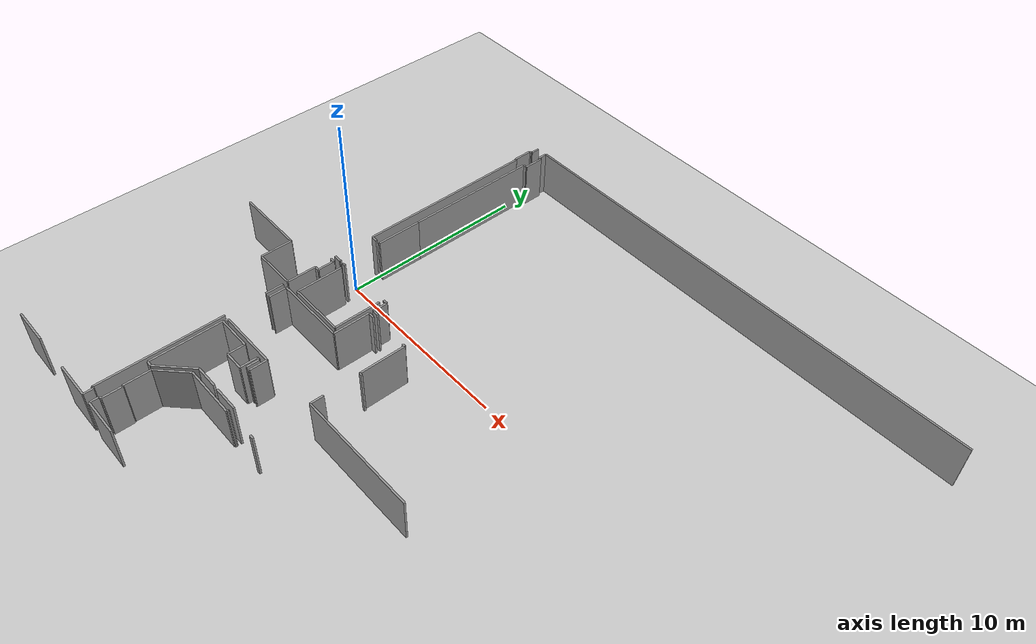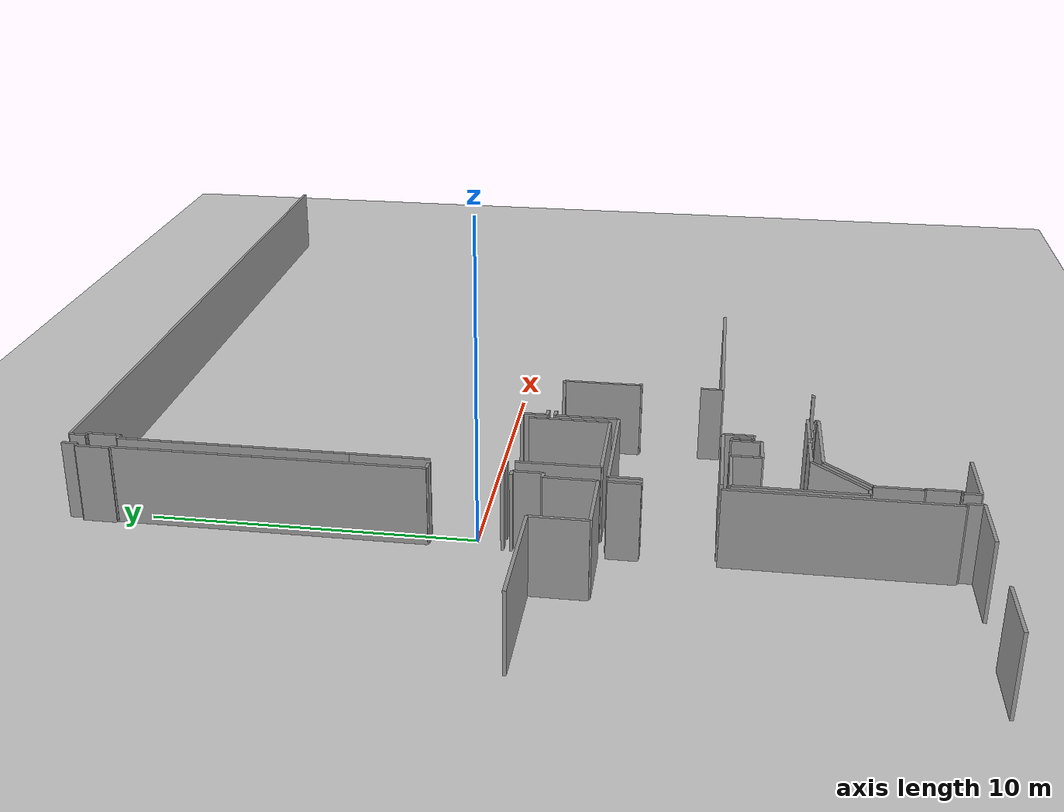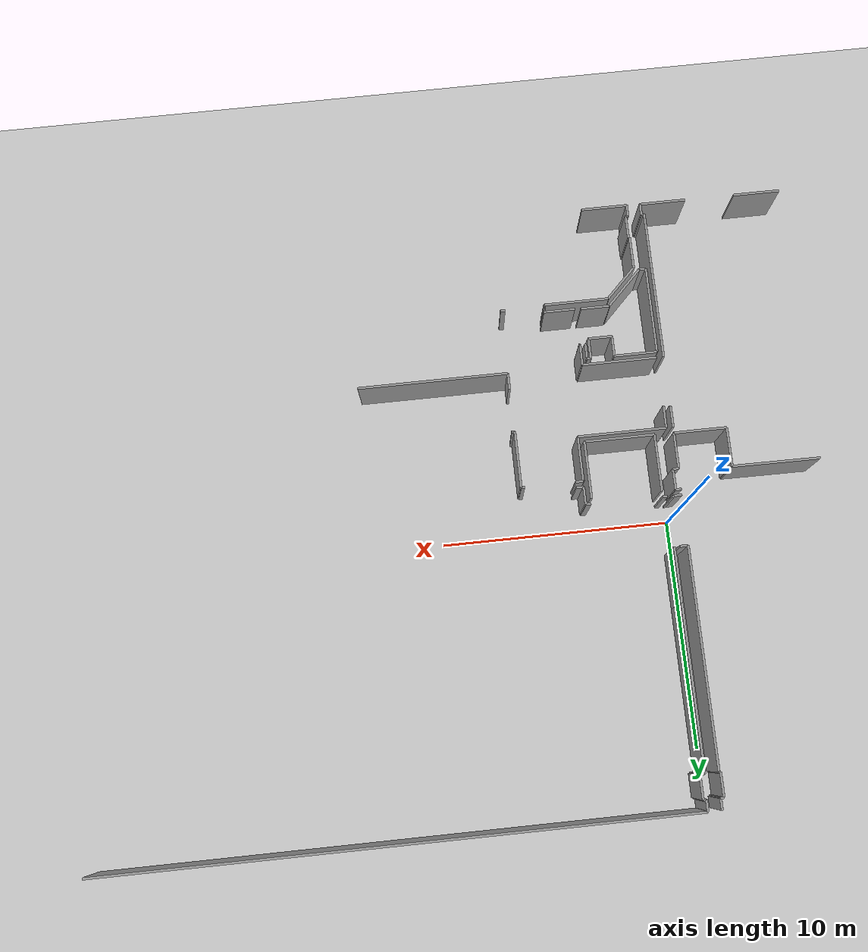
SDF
<sdf version="1.6">
 <world name="default">
  <model name="ground_plane">
   <static>1</static>
   <link name="link">
    <collision name="collision">
     <geometry><plane><normal>0 0 1</normal><size>100 100</size></plane></geometry>
     <surface><friction><ode><mu>100</mu><mu2>50</mu2></ode></friction></surface>
    </collision>
    <visual name="visual">
     <cast_shadows>0</cast_shadows>
     <geometry><plane><normal>0 0 1</normal><size>100 100</size></plane></geometry>
     <material>
      <script><uri>file://media/materials/scripts/gazebo.material</uri><name>Gazebo/Grey</name></script>
     </material>
    </visual>
   </link>
  </model>
  <model name="0510040941_A-40">
   <static>1</static>
   <link name="Wall_61">
    <collision name="Wall_61_Collision">
     <geometry><box><size>0.488544196635 0.1 2.5</size></box></geometry>
     <pose>0.244272098318 0 1.25 0 0 0</pose>
    </collision>
    <visual name="Wall_61_Visual">
     <pose>0.244272098318 0 1.25 0 0 0</pose>
     <geometry><box><size>0.488544196635 0.1 2.5</size></box></geometry>
     <material>
      <script><uri>file://media/materials/scripts/gazebo.material</uri><name>Gazebo/Grey</name></script>
      <ambient>1 1 1 1</ambient>
     </material>
    </visual>
    <pose>58.0930034941 -0.0197852789915 0 0 0 -1.57079632679</pose>
   </link>
   <link name="Wall_62">
    <collision name="Wall_62_Collision">
     <geometry><box><size>0.143443272688 0.1 2.5</size></box></geometry>
     <pose>0.071721636344 0 1.25 0 0 0</pose>
    </collision>
    <visual name="Wall_62_Visual">
     <pose>0.071721636344 0 1.25 0 0 0</pose>
     <geometry><box><size>0.143443272688 0.1 2.5</size></box></geometry>
     <material>
      <script><uri>file://media/materials/scripts/gazebo.material</uri><name>Gazebo/Grey</name></script>
      <ambient>1 1 1 1</ambient>
     </material>
    </visual>
    <pose>58.0930034941 -0.508329475627 0 0 0 3.14159265359</pose>
   </link>
   <link name="Wall_63">
    <collision name="Wall_63_Collision">
     <geometry><box><size>1.05153684691 0.1 2.5</size></box></geometry>
     <pose>0.525768423456 0 1.25 0 0 0</pose>
    </collision>
    <visual name="Wall_63_Visual">
     <pose>0.525768423456 0 1.25 0 0 0</pose>
     <geometry><box><size>1.05153684691 0.1 2.5</size></box></geometry>
     <material>
      <script><uri>file://media/materials/scripts/gazebo.material</uri><name>Gazebo/Grey</name></script>
      <ambient>1 1 1 1</ambient>
     </material>
    </visual>
    <pose>57.9495602214 -0.508329475627 0 0 0 -1.57079632679</pose>
   </link>
   <link name="Wall_64">
    <collision name="Wall_64_Collision">
     <geometry><box><size>0.0591021795514 0.1 2.5</size></box></geometry>
     <pose>0.0295510897757 0 1.25 0 0 0</pose>
    </collision>
    <visual name="Wall_64_Visual">
     <pose>0.0295510897757 0 1.25 0 0 0</pose>
     <geometry><box><size>0.0591021795514 0.1 2.5</size></box></geometry>
     <material>
      <script><uri>file://media/materials/scripts/gazebo.material</uri><name>Gazebo/Grey</name></script>
      <ambient>1 1 1 1</ambient>
     </material>
    </visual>
    <pose>57.9495602214 -1.55986632254 0 0 0 0.0</pose>
   </link>
   <link name="Wall_65">
    <collision name="Wall_65_Collision">
     <geometry><box><size>9.54639711338 0.1 2.5</size></box></geometry>
     <pose>4.77319855669 0 1.25 0 0 0</pose>
    </collision>
    <visual name="Wall_65_Visual">
     <pose>4.77319855669 0 1.25 0 0 0</pose>
     <geometry><box><size>9.54639711338 0.1 2.5</size></box></geometry>
     <material>
      <script><uri>file://media/materials/scripts/gazebo.material</uri><name>Gazebo/Grey</name></script>
      <ambient>1 1 1 1</ambient>
     </material>
    </visual>
    <pose>58.008662401 -1.55986632254 0 0 0 -1.57079632679</pose>
   </link>
   <link name="Wall_66">
    <collision name="Wall_66_Collision">
     <geometry><box><size>0.353471618905 0.1 2.5</size></box></geometry>
     <pose>0.176735809453 0 1.25 0 0 0</pose>
    </collision>
    <visual name="Wall_66_Visual">
     <pose>0.176735809453 0 1.25 0 0 0</pose>
     <geometry><box><size>0.353471618905 0.1 2.5</size></box></geometry>
     <material>
      <script><uri>file://media/materials/scripts/gazebo.material</uri><name>Gazebo/Grey</name></script>
      <ambient>1 1 1 1</ambient>
     </material>
    </visual>
    <pose>58.008662401 -11.1062634359 0 0 0 0.0</pose>
   </link>
   <link name="Wall_67">
    <collision name="Wall_67_Collision">
     <geometry><box><size>0.0672192170864 0.1 2.5</size></box></geometry>
     <pose>0.0336096085432 0 1.25 0 0 0</pose>
    </collision>
    <visual name="Wall_67_Visual">
     <pose>0.0336096085432 0 1.25 0 0 0</pose>
     <geometry><box><size>0.0672192170864 0.1 2.5</size></box></geometry>
     <material>
      <script><uri>file://media/materials/scripts/gazebo.material</uri><name>Gazebo/Grey</name></script>
      <ambient>1 1 1 1</ambient>
     </material>
    </visual>
    <pose>58.3621340199 -13.2506832897 0 0 0 -1.57079632679</pose>
   </link>
   <link name="Wall_68">
    <collision name="Wall_68_Collision">
     <geometry><box><size>0.389998287812 0.1 2.5</size></box></geometry>
     <pose>0.194999143906 0 1.25 0 0 0</pose>
    </collision>
    <visual name="Wall_68_Visual">
     <pose>0.194999143906 0 1.25 0 0 0</pose>
     <geometry><box><size>0.389998287812 0.1 2.5</size></box></geometry>
     <material>
      <script><uri>file://media/materials/scripts/gazebo.material</uri><name>Gazebo/Grey</name></script>
      <ambient>1 1 1 1</ambient>
     </material>
    </visual>
    <pose>58.3621340199 -13.3179025068 0 0 0 3.14159265359</pose>
   </link>
   <link name="Wall_140">
    <collision name="Wall_140_Collision">
     <geometry><box><size>0.965166494391 0.1 2.5</size></box></geometry>
     <pose>0.482583247195 0 1.25 0 0 0</pose>
    </collision>
    <visual name="Wall_140_Visual">
     <pose>0.482583247195 0 1.25 0 0 0</pose>
     <geometry><box><size>0.965166494391 0.1 2.5</size></box></geometry>
     <material>
      <script><uri>file://media/materials/scripts/gazebo.material</uri><name>Gazebo/Grey</name></script>
      <ambient>1 1 1 1</ambient>
     </material>
    </visual>
    <pose>57.9553943422 -16.3206990799 0 0 0 -1.57079632679</pose>
   </link>
   <link name="Wall_141">
    <collision name="Wall_141_Collision">
     <geometry><box><size>6.64988300051 0.1 2.5</size></box></geometry>
     <pose>3.32494150026 0 1.25 0 0 0</pose>
    </collision>
    <visual name="Wall_141_Visual">
     <pose>3.32494150026 0 1.25 0 0 0</pose>
     <geometry><box><size>6.64988300051 0.1 2.5</size></box></geometry>
     <material>
      <script><uri>file://media/materials/scripts/gazebo.material</uri><name>Gazebo/Grey</name></script>
      <ambient>1 1 1 1</ambient>
     </material>
    </visual>
    <pose>57.9553943422 -19.5129777479 0 0 0 -1.57079632679</pose>
   </link>
   <link name="Wall_142">
    <collision name="Wall_142_Collision">
     <geometry><box><size>0.123657993697 0.1 2.5</size></box></geometry>
     <pose>0.0618289968483 0 1.25 0 0 0</pose>
    </collision>
    <visual name="Wall_142_Visual">
     <pose>0.0618289968483 0 1.25 0 0 0</pose>
     <geometry><box><size>0.123657993697 0.1 2.5</size></box></geometry>
     <material>
      <script><uri>file://media/materials/scripts/gazebo.material</uri><name>Gazebo/Grey</name></script>
      <ambient>1 1 1 1</ambient>
     </material>
    </visual>
    <pose>57.9553943422 -26.1628607484 0 0 0 0.0</pose>
   </link>
   <link name="Wall_143">
    <collision name="Wall_143_Collision">
     <geometry><box><size>0.493997831229 0.1 2.5</size></box></geometry>
     <pose>0.246998915615 0 1.25 0 0 0</pose>
    </collision>
    <visual name="Wall_143_Visual">
     <pose>0.246998915615 0 1.25 0 0 0</pose>
     <geometry><box><size>0.493997831229 0.1 2.5</size></box></geometry>
     <material>
      <script><uri>file://media/materials/scripts/gazebo.material</uri><name>Gazebo/Grey</name></script>
      <ambient>1 1 1 1</ambient>
     </material>
    </visual>
    <pose>58.0790523359 -26.1628607484 0 0 0 -1.57079632679</pose>
   </link>
   <link name="Wall_144">
    <collision name="Wall_144_Collision">
     <geometry><box><size>2.02976669859 0.1 2.5</size></box></geometry>
     <pose>1.01488334929 0 1.25 0 0 0</pose>
    </collision>
    <visual name="Wall_144_Visual">
     <pose>1.01488334929 0 1.25 0 0 0</pose>
     <geometry><box><size>2.02976669859 0.1 2.5</size></box></geometry>
     <material>
      <script><uri>file://media/materials/scripts/gazebo.material</uri><name>Gazebo/Grey</name></script>
      <ambient>1 1 1 1</ambient>
     </material>
    </visual>
    <pose>58.0790523359 -26.6568585796 0 0 0 3.14159265359</pose>
   </link>
   <link name="Wall_145">
    <collision name="Wall_145_Collision">
     <geometry><box><size>2.05500561217 0.1 2.5</size></box></geometry>
     <pose>1.02750280609 0 1.25 0 0 0</pose>
    </collision>
    <visual name="Wall_145_Visual">
     <pose>1.02750280609 0 1.25 0 0 0</pose>
     <geometry><box><size>2.05500561217 0.1 2.5</size></box></geometry>
     <material>
      <script><uri>file://media/materials/scripts/gazebo.material</uri><name>Gazebo/Grey</name></script>
      <ambient>1 1 1 1</ambient>
     </material>
    </visual>
    <pose>53.8536269841 -26.6568585796 0 0 0 3.14159265359</pose>
   </link>
   <link name="Wall_152">
    <collision name="Wall_152_Collision">
     <geometry><box><size>0.249345246777 0.1 2.5</size></box></geometry>
     <pose>0.124672623388 0 1.25 0 0 0</pose>
    </collision>
    <visual name="Wall_152_Visual">
     <pose>0.124672623388 0 1.25 0 0 0</pose>
     <geometry><box><size>0.249345246777 0.1 2.5</size></box></geometry>
     <material>
      <script><uri>file://media/materials/scripts/gazebo.material</uri><name>Gazebo/Grey</name></script>
      <ambient>1 1 1 1</ambient>
     </material>
    </visual>
    <pose>57.96249675 -13.5709257862 0 0 0 0.0</pose>
   </link>
   <link name="Wall_153">
    <collision name="Wall_153_Collision">
     <geometry><box><size>0.907332601954 0.1 2.5</size></box></geometry>
     <pose>0.453666300977 0 1.25 0 0 0</pose>
    </collision>
    <visual name="Wall_153_Visual">
     <pose>0.453666300977 0 1.25 0 0 0</pose>
     <geometry><box><size>0.907332601954 0.1 2.5</size></box></geometry>
     <material>
      <script><uri>file://media/materials/scripts/gazebo.material</uri><name>Gazebo/Grey</name></script>
      <ambient>1 1 1 1</ambient>
     </material>
    </visual>
    <pose>58.2118419968 -13.5709257862 0 0 0 -1.57079632679</pose>
   </link>
   <link name="Wall_154">
    <collision name="Wall_154_Collision">
     <geometry><box><size>0.249345246777 0.1 2.5</size></box></geometry>
     <pose>0.124672623388 0 1.25 0 0 0</pose>
    </collision>
    <visual name="Wall_154_Visual">
     <pose>0.124672623388 0 1.25 0 0 0</pose>
     <geometry><box><size>0.249345246777 0.1 2.5</size></box></geometry>
     <material>
      <script><uri>file://media/materials/scripts/gazebo.material</uri><name>Gazebo/Grey</name></script>
      <ambient>1 1 1 1</ambient>
     </material>
    </visual>
    <pose>58.2118419968 -14.4782583881 0 0 0 3.14159265359</pose>
   </link>
   <link name="Wall_155">
    <collision name="Wall_155_Collision">
     <geometry><box><size>1.58611986582 0.1 2.5</size></box></geometry>
     <pose>0.793059932908 0 1.25 0 0 0</pose>
    </collision>
    <visual name="Wall_155_Visual">
     <pose>0.793059932908 0 1.25 0 0 0</pose>
     <geometry><box><size>1.58611986582 0.1 2.5</size></box></geometry>
     <material>
      <script><uri>file://media/materials/scripts/gazebo.material</uri><name>Gazebo/Grey</name></script>
      <ambient>1 1 1 1</ambient>
     </material>
    </visual>
    <pose>57.96249675 -14.4782583881 0 0 0 -1.57079632679</pose>
   </link>
   <link name="Wall_156">
    <collision name="Wall_156_Collision">
     <geometry><box><size>2.30866303514 0.1 2.5</size></box></geometry>
     <pose>1.15433151757 0 1.25 0 0 0</pose>
    </collision>
    <visual name="Wall_156_Visual">
     <pose>1.15433151757 0 1.25 0 0 0</pose>
     <geometry><box><size>2.30866303514 0.1 2.5</size></box></geometry>
     <material>
      <script><uri>file://media/materials/scripts/gazebo.material</uri><name>Gazebo/Grey</name></script>
      <ambient>1 1 1 1</ambient>
     </material>
    </visual>
    <pose>57.96249675 -16.0643782539 0 0 0 3.14159265359</pose>
   </link>
   <link name="Wall_157">
    <collision name="Wall_157_Collision">
     <geometry><box><size>1.72613876329 0.1 2.5</size></box></geometry>
     <pose>0.863069381647 0 1.25 0 0 0</pose>
    </collision>
    <visual name="Wall_157_Visual">
     <pose>0.863069381647 0 1.25 0 0 0</pose>
     <geometry><box><size>1.72613876329 0.1 2.5</size></box></geometry>
     <material>
      <script><uri>file://media/materials/scripts/gazebo.material</uri><name>Gazebo/Grey</name></script>
      <ambient>1 1 1 1</ambient>
     </material>
    </visual>
    <pose>55.6538337149 -16.0643782539 0 0 0 1.57079632679</pose>
   </link>
   <link name="Wall_158">
    <collision name="Wall_158_Collision">
     <geometry><box><size>3.83614340253 0.1 2.5</size></box></geometry>
     <pose>1.91807170126 0 1.25 0 0 0</pose>
    </collision>
    <visual name="Wall_158_Visual">
     <pose>1.91807170126 0 1.25 0 0 0</pose>
     <geometry><box><size>3.83614340253 0.1 2.5</size></box></geometry>
     <material>
      <script><uri>file://media/materials/scripts/gazebo.material</uri><name>Gazebo/Grey</name></script>
      <ambient>1 1 1 1</ambient>
     </material>
    </visual>
    <pose>55.6538337149 -14.3382394907 0 0 0 3.13504642693</pose>
   </link>
   <link name="Wall_159">
    <collision name="Wall_159_Collision">
     <geometry><box><size>2.51628163584 0.1 2.5</size></box></geometry>
     <pose>1.25814081792 0 1.25 0 0 0</pose>
    </collision>
    <visual name="Wall_159_Visual">
     <pose>1.25814081792 0 1.25 0 0 0</pose>
     <geometry><box><size>2.51628163584 0.1 2.5</size></box></geometry>
     <material>
      <script><uri>file://media/materials/scripts/gazebo.material</uri><name>Gazebo/Grey</name></script>
      <ambient>1 1 1 1</ambient>
     </material>
    </visual>
    <pose>58.8081905982 -16.0817537874 0 0 0 1.57079632679</pose>
   </link>
   <link name="Wall_160">
    <collision name="Wall_160_Collision">
     <geometry><box><size>2.51311091805 0.1 2.5</size></box></geometry>
     <pose>1.25655545902 0 1.25 0 0 0</pose>
    </collision>
    <visual name="Wall_160_Visual">
     <pose>1.25655545902 0 1.25 0 0 0</pose>
     <geometry><box><size>2.51311091805 0.1 2.5</size></box></geometry>
     <material>
      <script><uri>file://media/materials/scripts/gazebo.material</uri><name>Gazebo/Grey</name></script>
      <ambient>1 1 1 1</ambient>
     </material>
    </visual>
    <pose>61.8610845123 -13.5654721516 0 0 0 -1.57079632679</pose>
   </link>
   <link name="Wall_161">
    <collision name="Wall_161_Collision">
     <geometry><box><size>3.05289556067 0.1 2.5</size></box></geometry>
     <pose>1.52644778033 0 1.25 0 0 0</pose>
    </collision>
    <visual name="Wall_161_Visual">
     <pose>1.52644778033 0 1.25 0 0 0</pose>
     <geometry><box><size>3.05289556067 0.1 2.5</size></box></geometry>
     <material>
      <script><uri>file://media/materials/scripts/gazebo.material</uri><name>Gazebo/Grey</name></script>
      <ambient>1 1 1 1</ambient>
     </material>
    </visual>
    <pose>61.8610845123 -16.0785830696 0 0 0 -3.1405540598</pose>
   </link>
   <link name="Wall_162">
    <collision name="Wall_162_Collision">
     <geometry><box><size>7.13170527544 0.1 2.5</size></box></geometry>
     <pose>3.56585263772 0 1.25 0 0 0</pose>
    </collision>
    <visual name="Wall_162_Visual">
     <pose>3.56585263772 0 1.25 0 0 0</pose>
     <geometry><box><size>7.13170527544 0.1 2.5</size></box></geometry>
     <material>
      <script><uri>file://media/materials/scripts/gazebo.material</uri><name>Gazebo/Grey</name></script>
      <ambient>1 1 1 1</ambient>
     </material>
    </visual>
    <pose>58.6050110024 -8.68586430596 0 0 0 1.57079632679</pose>
   </link>
   <link name="Wall_163">
    <collision name="Wall_163_Collision">
     <geometry><box><size>0.20939420266 0.1 2.5</size></box></geometry>
     <pose>0.10469710133 0 1.25 0 0 0</pose>
    </collision>
    <visual name="Wall_163_Visual">
     <pose>0.10469710133 0 1.25 0 0 0</pose>
     <geometry><box><size>0.20939420266 0.1 2.5</size></box></geometry>
     <material>
      <script><uri>file://media/materials/scripts/gazebo.material</uri><name>Gazebo/Grey</name></script>
      <ambient>1 1 1 1</ambient>
     </material>
    </visual>
    <pose>58.6050110024 -1.55415903052 0 0 0 0.0</pose>
   </link>
   <link name="Wall_164">
    <collision name="Wall_164_Collision">
     <geometry><box><size>1.04126372128 0.1 2.5</size></box></geometry>
     <pose>0.520631860641 0 1.25 0 0 0</pose>
    </collision>
    <visual name="Wall_164_Visual">
     <pose>0.520631860641 0 1.25 0 0 0</pose>
     <geometry><box><size>1.04126372128 0.1 2.5</size></box></geometry>
     <material>
      <script><uri>file://media/materials/scripts/gazebo.material</uri><name>Gazebo/Grey</name></script>
      <ambient>1 1 1 1</ambient>
     </material>
    </visual>
    <pose>58.8144052051 -1.55415903052 0 0 0 1.57079632679</pose>
   </link>
   <link name="Wall_165">
    <collision name="Wall_165_Collision">
     <geometry><box><size>0.13076040154 0.1 2.5</size></box></geometry>
     <pose>0.0653802007699 0 1.25 0 0 0</pose>
    </collision>
    <visual name="Wall_165_Visual">
     <pose>0.0653802007699 0 1.25 0 0 0</pose>
     <geometry><box><size>0.13076040154 0.1 2.5</size></box></geometry>
     <material>
      <script><uri>file://media/materials/scripts/gazebo.material</uri><name>Gazebo/Grey</name></script>
      <ambient>1 1 1 1</ambient>
     </material>
    </visual>
    <pose>58.8144052051 -0.51289530924 0 0 0 3.14159265359</pose>
   </link>
   <link name="Wall_166">
    <collision name="Wall_166_Collision">
     <geometry><box><size>0.498183178708 0.1 2.5</size></box></geometry>
     <pose>0.249091589354 0 1.25 0 0 0</pose>
    </collision>
    <visual name="Wall_166_Visual">
     <pose>0.249091589354 0 1.25 0 0 0</pose>
     <geometry><box><size>0.498183178708 0.1 2.5</size></box></geometry>
     <material>
      <script><uri>file://media/materials/scripts/gazebo.material</uri><name>Gazebo/Grey</name></script>
      <ambient>1 1 1 1</ambient>
     </material>
    </visual>
    <pose>58.6836448035 -0.51289530924 0 0 0 1.57079632679</pose>
   </link>
   <link name="Wall_167">
    <collision name="Wall_167_Collision">
     <geometry><box><size>25.7403943105 0.1 2.5</size></box></geometry>
     <pose>12.8701971552 0 1.25 0 0 0</pose>
    </collision>
    <visual name="Wall_167_Visual">
     <pose>12.8701971552 0 1.25 0 0 0</pose>
     <geometry><box><size>25.7403943105 0.1 2.5</size></box></geometry>
     <material>
      <script><uri>file://media/materials/scripts/gazebo.material</uri><name>Gazebo/Grey</name></script>
      <ambient>1 1 1 1</ambient>
     </material>
    </visual>
    <pose>58.6836448035 -0.0147121305321 0 0 0 0.0</pose>
   </link>
   <link name="Wall_182">
    <collision name="Wall_182_Collision">
     <geometry><box><size>0.325949788513 0.1 2.5</size></box></geometry>
     <pose>0.162974894257 0 1.25 0 0 0</pose>
    </collision>
    <visual name="Wall_182_Visual">
     <pose>0.162974894257 0 1.25 0 0 0</pose>
     <geometry><box><size>0.325949788513 0.1 2.5</size></box></geometry>
     <material>
      <script><uri>file://media/materials/scripts/gazebo.material</uri><name>Gazebo/Grey</name></script>
      <ambient>1 1 1 1</ambient>
     </material>
    </visual>
    <pose>62.4602233454 -14.1020844299 0 0 0 3.14159265359</pose>
   </link>
   <link name="Wall_183">
    <collision name="Wall_183_Collision">
     <geometry><box><size>0.774669769742 0.1 2.5</size></box></geometry>
     <pose>0.387334884871 0 1.25 0 0 0</pose>
    </collision>
    <visual name="Wall_183_Visual">
     <pose>0.387334884871 0 1.25 0 0 0</pose>
     <geometry><box><size>0.774669769742 0.1 2.5</size></box></geometry>
     <material>
      <script><uri>file://media/materials/scripts/gazebo.material</uri><name>Gazebo/Grey</name></script>
      <ambient>1 1 1 1</ambient>
     </material>
    </visual>
    <pose>62.1342735568 -14.1020844299 0 0 0 1.57079632679</pose>
   </link>
   <link name="Wall_184">
    <collision name="Wall_184_Collision">
     <geometry><box><size>0.230194111343 0.1 2.5</size></box></geometry>
     <pose>0.115097055671 0 1.25 0 0 0</pose>
    </collision>
    <visual name="Wall_184_Visual">
     <pose>0.115097055671 0 1.25 0 0 0</pose>
     <geometry><box><size>0.230194111343 0.1 2.5</size></box></geometry>
     <material>
      <script><uri>file://media/materials/scripts/gazebo.material</uri><name>Gazebo/Grey</name></script>
      <ambient>1 1 1 1</ambient>
     </material>
    </visual>
    <pose>62.1342735568 -13.3274146601 0 0 0 3.14159265359</pose>
   </link>
   <link name="Wall_185">
    <collision name="Wall_185_Collision">
     <geometry><box><size>0.203052767085 0.1 2.5</size></box></geometry>
     <pose>0.101526383543 0 1.25 0 0 0</pose>
    </collision>
    <visual name="Wall_185_Visual">
     <pose>0.101526383543 0 1.25 0 0 0</pose>
     <geometry><box><size>0.203052767085 0.1 2.5</size></box></geometry>
     <material>
      <script><uri>file://media/materials/scripts/gazebo.material</uri><name>Gazebo/Grey</name></script>
      <ambient>1 1 1 1</ambient>
     </material>
    </visual>
    <pose>58.8009613616 -13.3274146601 0 0 0 3.14159265359</pose>
   </link>
   <link name="Wall_186">
    <collision name="Wall_186_Collision">
     <geometry><box><size>2.42624364624 0.1 2.5</size></box></geometry>
     <pose>1.21312182312 0 1.25 0 0 0</pose>
    </collision>
    <visual name="Wall_186_Visual">
     <pose>1.21312182312 0 1.25 0 0 0</pose>
     <geometry><box><size>2.42624364624 0.1 2.5</size></box></geometry>
     <material>
      <script><uri>file://media/materials/scripts/gazebo.material</uri><name>Gazebo/Grey</name></script>
      <ambient>1 1 1 1</ambient>
     </material>
    </visual>
    <pose>58.5979085945 -11.1120975566 0 0 0 1.5678689959</pose>
   </link>
   <link name="Wall_187">
    <collision name="Wall_187_Collision">
     <geometry><box><size>3.8654854686 0.1 2.5</size></box></geometry>
     <pose>1.9327427343 0 1.25 0 0 0</pose>
    </collision>
    <visual name="Wall_187_Visual">
     <pose>1.9327427343 0 1.25 0 0 0</pose>
     <geometry><box><size>3.8654854686 0.1 2.5</size></box></geometry>
     <material>
      <script><uri>file://media/materials/scripts/gazebo.material</uri><name>Gazebo/Grey</name></script>
      <ambient>1 1 1 1</ambient>
     </material>
    </visual>
    <pose>58.2555979023 -16.322855168 0 0 0 0.0</pose>
   </link>
   <link name="Wall_188">
    <collision name="Wall_188_Collision">
     <geometry><box><size>1.97599132492 0.1 2.5</size></box></geometry>
     <pose>0.987995662458 0 1.25 0 0 0</pose>
    </collision>
    <visual name="Wall_188_Visual">
     <pose>0.987995662458 0 1.25 0 0 0</pose>
     <geometry><box><size>1.97599132492 0.1 2.5</size></box></geometry>
     <material>
      <script><uri>file://media/materials/scripts/gazebo.material</uri><name>Gazebo/Grey</name></script>
      <ambient>1 1 1 1</ambient>
     </material>
    </visual>
    <pose>62.1210833709 -16.322855168 0 0 0 1.57079632679</pose>
   </link>
   <link name="Wall_189">
    <collision name="Wall_189_Collision">
     <geometry><box><size>0.334447312183 0.1 2.5</size></box></geometry>
     <pose>0.167223656091 0 1.25 0 0 0</pose>
    </collision>
    <visual name="Wall_189_Visual">
     <pose>0.167223656091 0 1.25 0 0 0</pose>
     <geometry><box><size>0.334447312183 0.1 2.5</size></box></geometry>
     <material>
      <script><uri>file://media/materials/scripts/gazebo.material</uri><name>Gazebo/Grey</name></script>
      <ambient>1 1 1 1</ambient>
     </material>
    </visual>
    <pose>62.1210833709 -14.346863843 0 0 0 0.0</pose>
   </link>
   <link name="Wall_190">
    <collision name="Wall_190_Collision">
     <geometry><box><size>0.159423690335 0.1 2.5</size></box></geometry>
     <pose>0.0797118451675 0 1.25 0 0 0</pose>
    </collision>
    <visual name="Wall_190_Visual">
     <pose>0.0797118451675 0 1.25 0 0 0</pose>
     <geometry><box><size>0.159423690335 0.1 2.5</size></box></geometry>
     <material>
      <script><uri>file://media/materials/scripts/gazebo.material</uri><name>Gazebo/Grey</name></script>
      <ambient>1 1 1 1</ambient>
     </material>
    </visual>
    <pose>64.6529649382 -14.346863843 0 0 0 0.0</pose>
   </link>
   <link name="Wall_191">
    <collision name="Wall_191_Collision">
     <geometry><box><size>2.48406714312 0.1 2.5</size></box></geometry>
     <pose>1.24203357156 0 1.25 0 0 0</pose>
    </collision>
    <visual name="Wall_191_Visual">
     <pose>1.24203357156 0 1.25 0 0 0</pose>
     <geometry><box><size>2.48406714312 0.1 2.5</size></box></geometry>
     <material>
      <script><uri>file://media/materials/scripts/gazebo.material</uri><name>Gazebo/Grey</name></script>
      <ambient>1 1 1 1</ambient>
     </material>
    </visual>
    <pose>64.8123886285 -14.346863843 0 0 0 -1.57079632679</pose>
   </link>
   <link name="Wall_192">
    <collision name="Wall_192_Collision">
     <geometry><box><size>0.132028688655 0.1 2.5</size></box></geometry>
     <pose>0.0660143443273 0 1.25 0 0 0</pose>
    </collision>
    <visual name="Wall_192_Visual">
     <pose>0.0660143443273 0 1.25 0 0 0</pose>
     <geometry><box><size>0.132028688655 0.1 2.5</size></box></geometry>
     <material>
      <script><uri>file://media/materials/scripts/gazebo.material</uri><name>Gazebo/Grey</name></script>
      <ambient>1 1 1 1</ambient>
     </material>
    </visual>
    <pose>64.8123886285 -16.8309309862 0 0 0 0.0</pose>
   </link>
   <link name="Wall_194">
    <collision name="Wall_194_Collision">
     <geometry><box><size>0.701743260639 0.1 2.5</size></box></geometry>
     <pose>0.35087163032 0 1.25 0 0 0</pose>
    </collision>
    <visual name="Wall_194_Visual">
     <pose>0.35087163032 0 1.25 0 0 0</pose>
     <geometry><box><size>0.701743260639 0.1 2.5</size></box></geometry>
     <material>
      <script><uri>file://media/materials/scripts/gazebo.material</uri><name>Gazebo/Grey</name></script>
      <ambient>1 1 1 1</ambient>
     </material>
    </visual>
    <pose>64.8269739304 -18.7648151789 0 0 0 -1.57079632679</pose>
   </link>
   <link name="Wall_195">
    <collision name="Wall_195_Collision">
     <geometry><box><size>6.58799058931 0.1 2.5</size></box></geometry>
     <pose>3.29399529465 0 1.25 0 0 0</pose>
    </collision>
    <visual name="Wall_195_Visual">
     <pose>3.29399529465 0 1.25 0 0 0</pose>
     <geometry><box><size>6.58799058931 0.1 2.5</size></box></geometry>
     <material>
      <script><uri>file://media/materials/scripts/gazebo.material</uri><name>Gazebo/Grey</name></script>
      <ambient>1 1 1 1</ambient>
     </material>
    </visual>
    <pose>64.8269739304 -19.4665584395 0 0 0 0.0</pose>
   </link>
   <link name="Wall_200">
    <collision name="Wall_200_Collision">
     <geometry><box><size>1.3739354315 0.1 2.5</size></box></geometry>
     <pose>0.686967715751 0 1.25 0 0 0</pose>
    </collision>
    <visual name="Wall_200_Visual">
     <pose>0.686967715751 0 1.25 0 0 0</pose>
     <geometry><box><size>1.3739354315 0.1 2.5</size></box></geometry>
     <material>
      <script><uri>file://media/materials/scripts/gazebo.material</uri><name>Gazebo/Grey</name></script>
      <ambient>1 1 1 1</ambient>
     </material>
    </visual>
    <pose>62.9422992777 -22.0844298732 0 0 0 3.14159265359</pose>
   </link>
   <link name="Wall_201">
    <collision name="Wall_201_Collision">
     <geometry><box><size>0.0339900946776 0.1 2.5</size></box></geometry>
     <pose>0.0169950473388 0 1.25 0 0 0</pose>
    </collision>
    <visual name="Wall_201_Visual">
     <pose>0.0169950473388 0 1.25 0 0 0</pose>
     <geometry><box><size>0.0339900946776 0.1 2.5</size></box></geometry>
     <material>
      <script><uri>file://media/materials/scripts/gazebo.material</uri><name>Gazebo/Grey</name></script>
      <ambient>1 1 1 1</ambient>
     </material>
    </visual>
    <pose>61.5683638462 -20.4336273646 0 0 0 3.14159265359</pose>
   </link>
   <link name="Wall_202">
    <collision name="Wall_202_Collision">
     <geometry><box><size>0.916464269181 0.1 2.5</size></box></geometry>
     <pose>0.458232134591 0 1.25 0 0 0</pose>
    </collision>
    <visual name="Wall_202_Visual">
     <pose>0.458232134591 0 1.25 0 0 0</pose>
     <geometry><box><size>0.916464269181 0.1 2.5</size></box></geometry>
     <material>
      <script><uri>file://media/materials/scripts/gazebo.material</uri><name>Gazebo/Grey</name></script>
      <ambient>1 1 1 1</ambient>
     </material>
    </visual>
    <pose>61.5343737515 -20.4336273646 0 0 0 1.57079632679</pose>
   </link>
   <link name="Wall_203">
    <collision name="Wall_203_Collision">
     <geometry><box><size>3.28448314129 0.1 2.5</size></box></geometry>
     <pose>1.64224157065 0 1.25 0 0 0</pose>
    </collision>
    <visual name="Wall_203_Visual">
     <pose>1.64224157065 0 1.25 0 0 0</pose>
     <geometry><box><size>3.28448314129 0.1 2.5</size></box></geometry>
     <material>
      <script><uri>file://media/materials/scripts/gazebo.material</uri><name>Gazebo/Grey</name></script>
      <ambient>1 1 1 1</ambient>
     </material>
    </visual>
    <pose>61.5343737515 -19.5171630954 0 0 0 3.14159265359</pose>
   </link>
   <link name="Wall_204">
    <collision name="Wall_204_Collision">
     <geometry><box><size>0.97913428646 0.1 2.5</size></box></geometry>
     <pose>0.48956714323 0 1.25 0 0 0</pose>
    </collision>
    <visual name="Wall_204_Visual">
     <pose>0.48956714323 0 1.25 0 0 0</pose>
     <geometry><box><size>0.97913428646 0.1 2.5</size></box></geometry>
     <material>
      <script><uri>file://media/materials/scripts/gazebo.material</uri><name>Gazebo/Grey</name></script>
      <ambient>1 1 1 1</ambient>
     </material>
    </visual>
    <pose>58.2498906102 -17.3019728206 0 0 0 1.56496737727</pose>
   </link>
   <link name="Wall_212">
    <collision name="Wall_212_Collision">
     <geometry><box><size>3.83821729563 0.1 2.5</size></box></geometry>
     <pose>1.91910864782 0 1.25 0 0 0</pose>
    </collision>
    <visual name="Wall_212_Visual">
     <pose>1.91910864782 0 1.25 0 0 0</pose>
     <geometry><box><size>3.83821729563 0.1 2.5</size></box></geometry>
     <material>
      <script><uri>file://media/materials/scripts/gazebo.material</uri><name>Gazebo/Grey</name></script>
      <ambient>1 1 1 1</ambient>
     </material>
    </visual>
    <pose>58.2115883394 -23.6076426982 0 0 0 1.57079632679</pose>
   </link>
   <link name="Wall_213">
    <collision name="Wall_213_Collision">
     <geometry><box><size>1.88619659719 0.1 2.5</size></box></geometry>
     <pose>0.943098298593 0 1.25 0 0 0</pose>
    </collision>
    <visual name="Wall_213_Visual">
     <pose>0.943098298593 0 1.25 0 0 0</pose>
     <geometry><box><size>1.88619659719 0.1 2.5</size></box></geometry>
     <material>
      <script><uri>file://media/materials/scripts/gazebo.material</uri><name>Gazebo/Grey</name></script>
      <ambient>1 1 1 1</ambient>
     </material>
    </visual>
    <pose>58.2115883394 -19.7694254025 0 0 0 0.0</pose>
   </link>
   <link name="Wall_214">
    <collision name="Wall_214_Collision">
     <geometry><box><size>0.899215564419 0.1 2.5</size></box></geometry>
     <pose>0.44960778221 0 1.25 0 0 0</pose>
    </collision>
    <visual name="Wall_214_Visual">
     <pose>0.44960778221 0 1.25 0 0 0</pose>
     <geometry><box><size>0.899215564419 0.1 2.5</size></box></geometry>
     <material>
      <script><uri>file://media/materials/scripts/gazebo.material</uri><name>Gazebo/Grey</name></script>
      <ambient>1 1 1 1</ambient>
     </material>
    </visual>
    <pose>60.0977849366 -19.7694254025 0 0 0 -1.57079632679</pose>
   </link>
   <link name="Wall_215">
    <collision name="Wall_215_Collision">
     <geometry><box><size>1.03631740153 0.1 2.5</size></box></geometry>
     <pose>0.518158700767 0 1.25 0 0 0</pose>
    </collision>
    <visual name="Wall_215_Visual">
     <pose>0.518158700767 0 1.25 0 0 0</pose>
     <geometry><box><size>1.03631740153 0.1 2.5</size></box></geometry>
     <material>
      <script><uri>file://media/materials/scripts/gazebo.material</uri><name>Gazebo/Grey</name></script>
      <ambient>1 1 1 1</ambient>
     </material>
    </visual>
    <pose>60.0977849366 -20.6686409669 0 0 0 0.0</pose>
   </link>
   <link name="Wall_216">
    <collision name="Wall_216_Collision">
     <geometry><box><size>0.893761929826 0.1 2.5</size></box></geometry>
     <pose>0.446880964913 0 1.25 0 0 0</pose>
    </collision>
    <visual name="Wall_216_Visual">
     <pose>0.446880964913 0 1.25 0 0 0</pose>
     <geometry><box><size>0.893761929826 0.1 2.5</size></box></geometry>
     <material>
      <script><uri>file://media/materials/scripts/gazebo.material</uri><name>Gazebo/Grey</name></script>
      <ambient>1 1 1 1</ambient>
     </material>
    </visual>
    <pose>61.1341023381 -20.6686409669 0 0 0 1.57079632679</pose>
   </link>
   <link name="Wall_217">
    <collision name="Wall_217_Collision">
     <geometry><box><size>0.159043204201 0.1 2.5</size></box></geometry>
     <pose>0.0795216021003 0 1.25 0 0 0</pose>
    </collision>
    <visual name="Wall_217_Visual">
     <pose>0.0795216021003 0 1.25 0 0 0</pose>
     <geometry><box><size>0.159043204201 0.1 2.5</size></box></geometry>
     <material>
      <script><uri>file://media/materials/scripts/gazebo.material</uri><name>Gazebo/Grey</name></script>
      <ambient>1 1 1 1</ambient>
     </material>
    </visual>
    <pose>61.1341023381 -19.7748790371 0 0 0 0.0</pose>
   </link>
   <link name="Wall_218">
    <collision name="Wall_218_Collision">
     <geometry><box><size>0.669021453077 0.1 2.5</size></box></geometry>
     <pose>0.334510726538 0 1.25 0 0 0</pose>
    </collision>
    <visual name="Wall_218_Visual">
     <pose>0.334510726538 0 1.25 0 0 0</pose>
     <geometry><box><size>0.669021453077 0.1 2.5</size></box></geometry>
     <material>
      <script><uri>file://media/materials/scripts/gazebo.material</uri><name>Gazebo/Grey</name></script>
      <ambient>1 1 1 1</ambient>
     </material>
    </visual>
    <pose>61.2931455423 -19.7748790371 0 0 0 -1.57079632679</pose>
   </link>
   <link name="Wall_219">
    <collision name="Wall_219_Collision">
     <geometry><box><size>1.25940910503 0.1 2.5</size></box></geometry>
     <pose>0.629704552517 0 1.25 0 0 0</pose>
    </collision>
    <visual name="Wall_219_Visual">
     <pose>0.629704552517 0 1.25 0 0 0</pose>
     <geometry><box><size>1.25940910503 0.1 2.5</size></box></geometry>
     <material>
      <script><uri>file://media/materials/scripts/gazebo.material</uri><name>Gazebo/Grey</name></script>
      <ambient>1 1 1 1</ambient>
     </material>
    </visual>
    <pose>61.2931455423 -22.0717470021 0 0 0 3.14159265359</pose>
   </link>
   <link name="Wall_220">
    <collision name="Wall_220_Collision">
     <geometry><box><size>2.17759180648 0.1 2.5</size></box></geometry>
     <pose>1.08879590324 0 1.25 0 0 0</pose>
    </collision>
    <visual name="Wall_220_Visual">
     <pose>1.08879590324 0 1.25 0 0 0</pose>
     <geometry><box><size>2.17759180648 0.1 2.5</size></box></geometry>
     <material>
      <script><uri>file://media/materials/scripts/gazebo.material</uri><name>Gazebo/Grey</name></script>
      <ambient>1 1 1 1</ambient>
     </material>
    </visual>
    <pose>60.0337364373 -22.0717470021 0 0 0 -2.35038754587</pose>
   </link>
   <link name="Wall_221">
    <collision name="Wall_221_Collision">
     <geometry><box><size>0.291607038076 0.1 2.5</size></box></geometry>
     <pose>0.145803519038 0 1.25 0 0 0</pose>
    </collision>
    <visual name="Wall_221_Visual">
     <pose>0.145803519038 0 1.25 0 0 0</pose>
     <geometry><box><size>0.291607038076 0.1 2.5</size></box></geometry>
     <material>
      <script><uri>file://media/materials/scripts/gazebo.material</uri><name>Gazebo/Grey</name></script>
      <ambient>1 1 1 1</ambient>
     </material>
    </visual>
    <pose>58.5029138896 -23.620452398 0 0 0 3.09765056199</pose>
   </link>
   <link name="Wall_222">
    <collision name="Wall_222_Collision">
     <geometry><box><size>1.02249307198 0.1 2.5</size></box></geometry>
     <pose>0.511246535991 0 1.25 0 0 0</pose>
    </collision>
    <visual name="Wall_222_Visual">
     <pose>0.511246535991 0 1.25 0 0 0</pose>
     <geometry><box><size>1.02249307198 0.1 2.5</size></box></geometry>
     <material>
      <script><uri>file://media/materials/scripts/gazebo.material</uri><name>Gazebo/Grey</name></script>
      <ambient>1 1 1 1</ambient>
     </material>
    </visual>
    <pose>58.7937321251 -26.1541095673 0 0 0 1.57079632679</pose>
   </link>
   <link name="Wall_223">
    <collision name="Wall_223_Collision">
     <geometry><box><size>0.0507314845935 0.1 2.5</size></box></geometry>
     <pose>0.0253657422967 0 1.25 0 0 0</pose>
    </collision>
    <visual name="Wall_223_Visual">
     <pose>0.0253657422967 0 1.25 0 0 0</pose>
     <geometry><box><size>0.0507314845935 0.1 2.5</size></box></geometry>
     <material>
      <script><uri>file://media/materials/scripts/gazebo.material</uri><name>Gazebo/Grey</name></script>
      <ambient>1 1 1 1</ambient>
     </material>
    </visual>
    <pose>58.7937321251 -25.1316164953 0 0 0 3.14159265359</pose>
   </link>
   <link name="Wall_224">
    <collision name="Wall_224_Collision">
     <geometry><box><size>1.41401330433 0.1 2.5</size></box></geometry>
     <pose>0.707006652166 0 1.25 0 0 0</pose>
    </collision>
    <visual name="Wall_224_Visual">
     <pose>0.707006652166 0 1.25 0 0 0</pose>
     <geometry><box><size>1.41401330433 0.1 2.5</size></box></geometry>
     <material>
      <script><uri>file://media/materials/scripts/gazebo.material</uri><name>Gazebo/Grey</name></script>
      <ambient>1 1 1 1</ambient>
     </material>
    </visual>
    <pose>58.7430006405 -25.1316164953 0 0 0 1.57079632679</pose>
   </link>
   <link name="Wall_225">
    <collision name="Wall_225_Collision">
     <geometry><box><size>1.84421810353 0.1 2.5</size></box></geometry>
     <pose>0.922109051764 0 1.25 0 0 0</pose>
    </collision>
    <visual name="Wall_225_Visual">
     <pose>0.922109051764 0 1.25 0 0 0</pose>
     <geometry><box><size>1.84421810353 0.1 2.5</size></box></geometry>
     <material>
      <script><uri>file://media/materials/scripts/gazebo.material</uri><name>Gazebo/Grey</name></script>
      <ambient>1 1 1 1</ambient>
     </material>
    </visual>
    <pose>58.7430006405 -23.717603191 0 0 0 0.788510388323</pose>
   </link>
   <link name="Wall_226">
    <collision name="Wall_226_Collision">
     <geometry><box><size>2.83043635418 0.1 2.5</size></box></geometry>
     <pose>1.41521817709 0 1.25 0 0 0</pose>
    </collision>
    <visual name="Wall_226_Visual">
     <pose>1.41521817709 0 1.25 0 0 0</pose>
     <geometry><box><size>2.83043635418 0.1 2.5</size></box></geometry>
     <material>
      <script><uri>file://media/materials/scripts/gazebo.material</uri><name>Gazebo/Grey</name></script>
      <ambient>1 1 1 1</ambient>
     </material>
    </visual>
    <pose>60.0429949332 -22.4094918608 0 0 0 0.0</pose>
   </link>
   <link name="Wall_227">
    <collision name="Wall_227_Collision">
     <geometry><box><size>0.0744484536409 0.1 2.5</size></box></geometry>
     <pose>0.0372242268205 0 1.25 0 0 0</pose>
    </collision>
    <visual name="Wall_227_Visual">
     <pose>0.0372242268205 0 1.25 0 0 0</pose>
     <geometry><box><size>0.0744484536409 0.1 2.5</size></box></geometry>
     <material>
      <script><uri>file://media/materials/scripts/gazebo.material</uri><name>Gazebo/Grey</name></script>
      <ambient>1 1 1 1</ambient>
     </material>
    </visual>
    <pose>62.8734312874 -22.4094918608 0 0 0 1.57079632679</pose>
   </link>
   <link name="Wall_228">
    <collision name="Wall_228_Collision">
     <geometry><box><size>0.0498436836131 0.1 2.5</size></box></geometry>
     <pose>0.0249218418066 0 1.25 0 0 0</pose>
    </collision>
    <visual name="Wall_228_Visual">
     <pose>0.0249218418066 0 1.25 0 0 0</pose>
     <geometry><box><size>0.0498436836131 0.1 2.5</size></box></geometry>
     <material>
      <script><uri>file://media/materials/scripts/gazebo.material</uri><name>Gazebo/Grey</name></script>
      <ambient>1 1 1 1</ambient>
     </material>
    </visual>
    <pose>62.8734312874 -22.3350434071 0 0 0 0.0</pose>
   </link>
   <link name="Wall_229">
    <collision name="Wall_229_Collision">
     <geometry><box><size>0.208125915545 0.1 2.5</size></box></geometry>
     <pose>0.104062957772 0 1.25 0 0 0</pose>
    </collision>
    <visual name="Wall_229_Visual">
     <pose>0.104062957772 0 1.25 0 0 0</pose>
     <geometry><box><size>0.208125915545 0.1 2.5</size></box></geometry>
     <material>
      <script><uri>file://media/materials/scripts/gazebo.material</uri><name>Gazebo/Grey</name></script>
      <ambient>1 1 1 1</ambient>
     </material>
    </visual>
    <pose>64.6298821127 -22.3350434071 0 0 0 0.0</pose>
   </link>
   <link name="Wall_234">
    <collision name="Wall_234_Collision">
     <geometry><box><size>2.02304477688 0.1 2.5</size></box></geometry>
     <pose>1.01152238844 0 1.25 0 0 0</pose>
    </collision>
    <visual name="Wall_234_Visual">
     <pose>1.01152238844 0 1.25 0 0 0</pose>
     <geometry><box><size>2.02304477688 0.1 2.5</size></box></geometry>
     <material>
      <script><uri>file://media/materials/scripts/gazebo.material</uri><name>Gazebo/Grey</name></script>
      <ambient>1 1 1 1</ambient>
     </material>
    </visual>
    <pose>60.7078310388 -26.6634536726 0 0 0 3.14159265359</pose>
   </link>
   <link name="Wall_235">
    <collision name="Wall_235_Collision">
     <geometry><box><size>0.490953942153 0.1 2.5</size></box></geometry>
     <pose>0.245476971077 0 1.25 0 0 0</pose>
    </collision>
    <visual name="Wall_235_Visual">
     <pose>0.245476971077 0 1.25 0 0 0</pose>
     <geometry><box><size>0.490953942153 0.1 2.5</size></box></geometry>
     <material>
      <script><uri>file://media/materials/scripts/gazebo.material</uri><name>Gazebo/Grey</name></script>
      <ambient>1 1 1 1</ambient>
     </material>
    </visual>
    <pose>58.6847862619 -26.6634536726 0 0 0 1.57079632679</pose>
   </link>
   <link name="Wall_236">
    <collision name="Wall_236_Collision">
     <geometry><box><size>0.110487099708 0.1 2.5</size></box></geometry>
     <pose>0.055243549854 0 1.25 0 0 0</pose>
    </collision>
    <visual name="Wall_236_Visual">
     <pose>0.055243549854 0 1.25 0 0 0</pose>
     <geometry><box><size>0.110487099708 0.1 2.5</size></box></geometry>
     <material>
      <script><uri>file://media/materials/scripts/gazebo.material</uri><name>Gazebo/Grey</name></script>
      <ambient>1 1 1 1</ambient>
     </material>
    </visual>
    <pose>58.6847862619 -26.1724997305 0 0 0 0.167224537803</pose>
   </link>
   <pose>-58.35 12.5394713145 0 0 0 0</pose>
  </model>
 </world>
</sdf>
